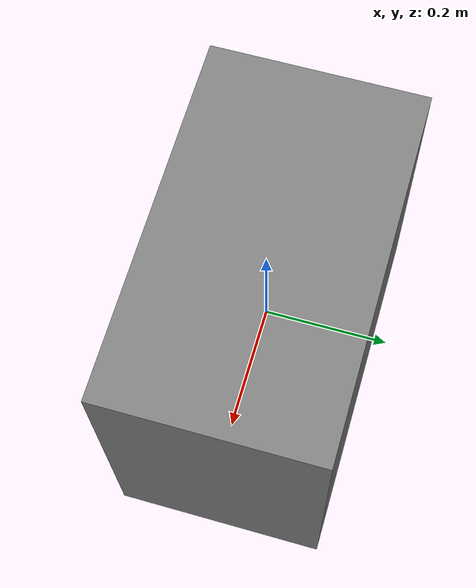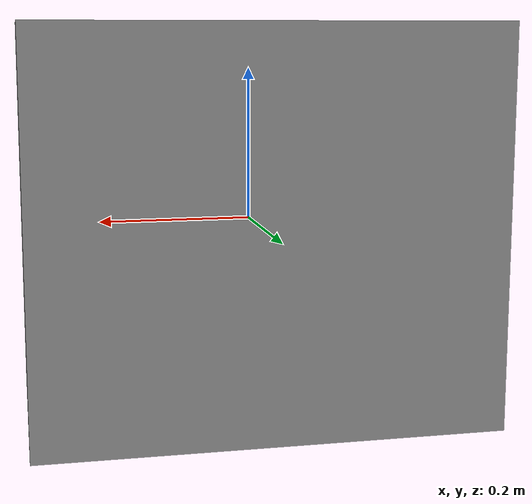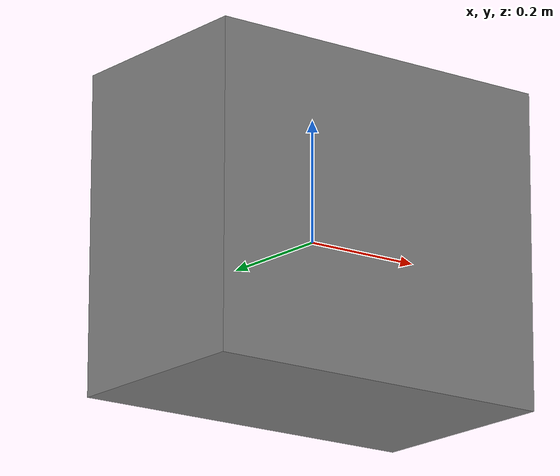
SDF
<?xml version="1.0" ?>
<sdf version="1.8">
  <model name="four_wheel_robot">
    <!-- Robot Base -->
    <link name="base_link">
      <visual name="base_visual">
        <geometry>
          <box>
            <size>0.60 0.35 0.52</size>
          </box>
        </geometry>
        <material>
          <ambient>0.5 0.5 0.5 1</ambient>
          <diffuse>0.5 0.5 0.5 1</diffuse>
          <specular>0.5 0.5 0.5 1</specular>
        </material>
      </visual>
      <collision name="base_collision">
        <geometry>
          <box>
            <size>0.60 0.35 0.52</size>
          </box>
        </geometry>
      </collision>
      <inertial>
        <mass>10.0</mass>
        <inertia>
          <ixx>1.0</ixx>
          <ixy>0.0</ixy>
          <ixz>0.0</ixz>
          <iyy>1.0</iyy>
          <iyz>0.0</iyz>
          <izz>1.0</izz>
        </inertia>
      </inertial>
    </link>

    <!-- Wheels -->
    <!-- Front Left Wheel -->
    <link name="front_left_wheel">
      <visual name="front_left_wheel_visual">
        <geometry>
          <cylinder>
            <radius>0.10</radius>
            <length>0.05</length>
          </cylinder>
        </geometry>
        <material>
          <ambient>0 0 0 1</ambient>
          <diffuse>0 0 0 1</diffuse>
          <specular>0 0 0 1</specular>
        </material>
      </visual>
      <collision name="front_left_wheel_collision">
        <geometry>
          <cylinder>
            <radius>0.10</radius>
            <length>0.05</length>
          </cylinder>
        </geometry>
      </collision>
      <inertial>
        <mass>1.0</mass>
        <inertia>
          <ixx>0.1</ixx>
          <ixy>0.0</ixy>
          <ixz>0.0</ixz>
          <iyy>0.1</iyy>
          <iyz>0.0</iyz>
          <izz>0.1</izz>
        </inertia>
      </inertial>
    </link>
    <joint name="front_left_wheel_joint" type="continuous">
      <parent>base_link</parent>
      <child>front_left_wheel</child>
      <pose>0.30 0.175 0 0 0 0</pose>
      <axis>
        <xyz>0 1 0</xyz>
        <limit>
          <effort>10.0</effort>
          <velocity>10</velocity>
        </limit>
        <dynamics>
          <damping>0.1</damping>
          <friction>0.1</friction>
        </dynamics>
      </axis>
    </joint>

    <!-- Front Right Wheel -->
    <link name="front_right_wheel">
      <visual name="front_right_wheel_visual">
        <geometry>
          <cylinder>
            <radius>0.10</radius>
            <length>0.05</length>
          </cylinder>
        </geometry>
        <material>
          <ambient>0 0 0 1</ambient>
          <diffuse>0 0 0 1</diffuse>
          <specular>0 0 0 1</specular>
        </material>
      </visual>
      <collision name="front_right_wheel_collision">
        <geometry>
          <cylinder>
            <radius>0.10</radius>
            <length>0.05</length>
          </cylinder>
        </geometry>
      </collision>
      <inertial>
        <mass>1.0</mass>
        <inertia>
          <ixx>0.1</ixx>
          <ixy>0.0</ixy>
          <ixz>0.0</ixz>
          <iyy>0.1</iyy>
          <iyz>0.0</iyz>
          <izz>0.1</izz>
        </inertia>
      </inertial>
    </link>
    <joint name="front_right_wheel_joint" type="continuous">
      <parent>base_link</parent>
      <child>front_right_wheel</child>
      <pose>0.30 -0.175 0 0 0 0</pose>
      <axis>
        <xyz>0 1 0</xyz>
        <limit>
          <effort>10.0</effort>
          <velocity>10</velocity>
        </limit>
        <dynamics>
          <damping>0.1</damping>
          <friction>0.1</friction>
        </dynamics>
      </axis>
    </joint>

    <!-- Rear Left Wheel -->
    <link name="rear_left_wheel">
      <visual name="rear_left_wheel_visual">
        <geometry>
          <cylinder>
            <radius>0.10</radius>
            <length>0.05</length>
          </cylinder>
        </geometry>
        <material>
          <ambient>0 0 0 1</ambient>
          <diffuse>0 0 0 1</diffuse>
          <specular>0 0 0 1</specular>
        </material>
      </visual>
      <collision name="rear_left_wheel_collision">
        <geometry>
          <cylinder>
            <radius>0.10</radius>
            <length>0.05</length>
          </cylinder>
        </geometry>
      </collision>
      <inertial>
        <mass>1.0</mass>
        <inertia>
          <ixx>0.1</ixx>
          <ixy>0.0</ixy>
          <ixz>0.0</ixz>
          <iyy>0.1</iyy>
          <iyz>0.0</iyz>
          <izz>0.1</izz>
        </inertia>
      </inertial>
    </link>
    <joint name="rear_left_wheel_joint" type="continuous">
      <parent>base_link</parent>
      <child>rear_left_wheel</child>
      <pose>-0.30 0.175 0 0 0 0</pose>
      <axis>
        <xyz>0 1 0</xyz>
        <limit>
          <effort>10.0</effort>
          <velocity>10</velocity>
        </limit>
        <dynamics>
          <damping>0.1</damping>
          <friction>0.1</friction>
        </dynamics>
      </axis>
    </joint>

    <!-- Rear Right Wheel -->
    <link name="rear_right_wheel">
      <visual name="rear_right_wheel_visual">
        <geometry>
          <cylinder>
            <radius>0.10</radius>
            <length>0.05</length>
          </cylinder>
        </geometry>
        <material>
          <ambient>0 0 0 1</ambient>
          <diffuse>0 0 0 1</diffuse>
          <specular>0 0 0 1</specular>
        </material>
      </visual>
      <collision name="rear_right_wheel_collision">
        <geometry>
          <cylinder>
            <radius>0.10</radius>
            <length>0.05</length>
          </cylinder>
        </geometry>
      </collision>
      <inertial>
        <mass>1.0</mass>
        <inertia>
          <ixx>0.1</ixx>
          <ixy>0.0</ixy>
          <ixz>0.0</ixz>
          <iyy>0.1</iyy>
          <iyz>0.0</iyz>
          <izz>0.1</izz>
        </inertia>
      </inertial>
    </link>
    <joint name="rear_right_wheel_joint" type="continuous">
      <parent>base_link</parent>
      <child>rear_right_wheel</child>
      <pose>-0.30 -0.175 0 0 0 0</pose>
      <axis>
        <xyz>0 1 0</xyz>
        <limit>
          <effort>10.0</effort>
          <velocity>10</velocity>
        </limit>
        <dynamics>
          <damping>0.1</damping>
          <friction>0.1</friction>
        </dynamics>
      </axis>
    </joint>

    <!-- LIDAR -->
    <link name="lidar_link">
      <pose>0 0 0.3 0 0 0</pose>
      <sensor name="lidar_sensor" type="ray">
        <pose>0 0 0 0 0 0</pose>
        <visualize>true</visualize>
        <update_rate>20</update_rate>
        <ray>
          <scan>
            <horizontal>
              <samples>640</samples>
              <resolution>1</resolution>
              <min_angle>-1.5708</min_angle>
              <max_angle>1.5708</max_angle>
            </horizontal>
          </scan>
          <range>
            <min>0.1</min>
            <max>10.0</max>
            <resolution>0.01</resolution>
          </range>
        </ray>
        <plugin name="gazebo_ros_laser" filename="libgazebo_ros_laser.so">
          <ros>
            <namespace>/four_wheel_robot</namespace>
            <remapping>~/scan:=scan</remapping>
          </ros>
          <frameName>lidar_link</frameName>
        </plugin>
      </sensor>
    </link>

    <!-- Depth Camera -->
    <link name="camera_link">
      <pose>0 0 0.3 0 0 0</pose>
      <sensor name="camera_sensor" type="depth">
        <pose>0 0 0 0 0 0</pose>
        <visualize>true</visualize>
        <update_rate>30</update_rate>
        <camera>
          <horizontal_fov>1.047</horizontal_fov>
          <image>
            <width>640</width>
            <height>480</height>
            <format>R8G8B8</format>
          </image>
          <clip>
            <near>0.1</near>
            <far>10.0</far>
          </clip>
        </camera>
        <plugin name="gazebo_ros_depth_camera" filename="libgazebo_ros_depth_camera.so">
          <ros>
            <namespace>/four_wheel_robot</namespace>
            <remapping>~/depth_camera/image_raw:=depth_image</remapping>
            <remapping>~/depth_camera/points:=depth_points</remapping>
          </ros>
          <frameName>camera_link</frameName>
        </plugin>
      </sensor>
    </link>

    <!-- Differential Drive Plugin -->
    <plugin name="diff_drive_controller" filename="libgazebo_ros_diff_drive.so">
      <ros>
        <namespace>/four_wheel_robot</namespace>
        <remapping>cmd_vel:=cmd_vel</remapping>
        <remapping>odom:=odom</remapping>
      </ros>
      <updateRate>50</updateRate>
      <leftJoint>rear_left_wheel_joint</leftJoint>
      <leftJoint>front_left_wheel_joint</leftJoint>
      <rightJoint>rear_right_wheel_joint</rightJoint>
      <rightJoint>front_right_wheel_joint</rightJoint>
      <wheelSeparation>0.35</wheelSeparation>
      <wheelDiameter>0.10</wheelDiameter>
      <wheelTorque>5.0</wheelTorque>
    </plugin>
  </model>
</sdf>
